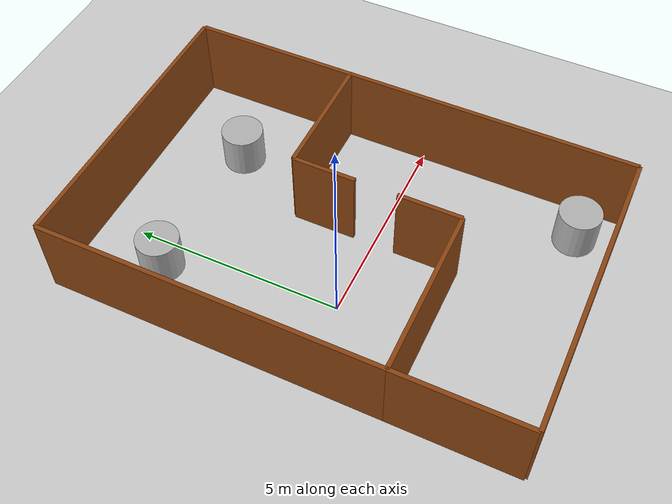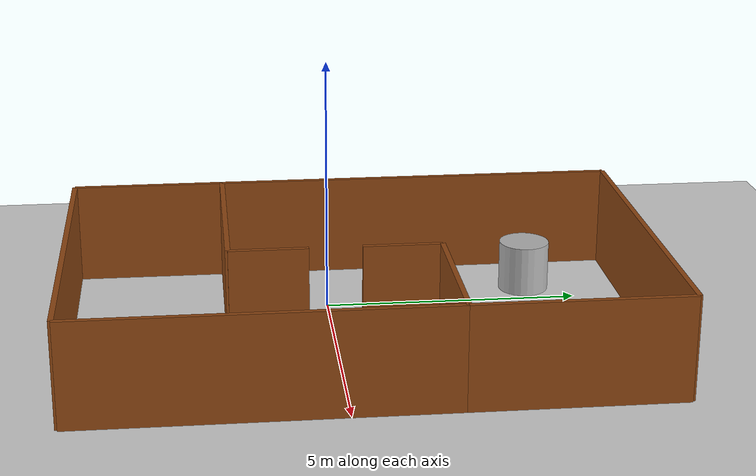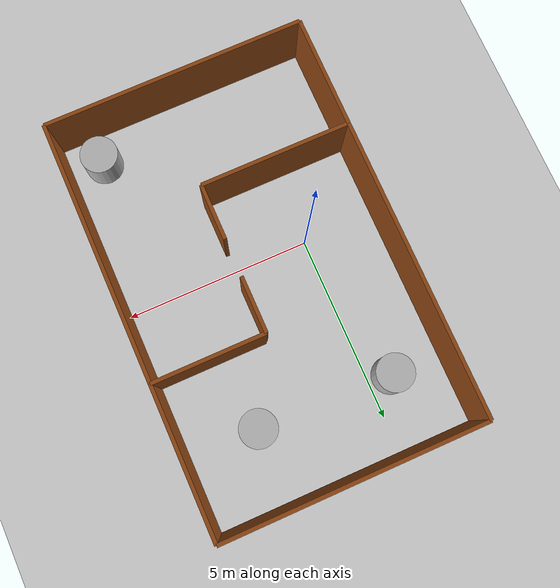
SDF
<?xml version="1.0" ?>

<sdf version="1.6">
  <world name="in_my_house">
    <physics name="1ms" type="ignored">
      <max_step_size>0.001</max_step_size>
      <real_time_factor>1.0</real_time_factor>
    </physics>
    <plugin
      filename="gz-sim-physics-system"
      name="gz::sim::systems::Physics">
    </plugin>
    <plugin
      filename="gz-sim-user-commands-system"
      name="gz::sim::systems::UserCommands">
    </plugin>
    <plugin
      filename="gz-sim-scene-broadcaster-system"
      name="gz::sim::systems::SceneBroadcaster">
    </plugin>
    <plugin
      filename="gz-sim-contact-system"
      name="gz::sim::systems::Contact">
    </plugin>

    <light type="directional" name="sun">
      <cast_shadows>true</cast_shadows>
      <pose>0 0 10 0 0 0</pose>
      <diffuse>0.8 0.8 0.8 1</diffuse>
      <specular>0.2 0.2 0.2 1</specular>
      <attenuation>
        <range>1000</range>
        <constant>0.9</constant>
        <linear>0.01</linear>
        <quadratic>0.001</quadratic>
      </attenuation>
      <direction>-0.5 0.1 -0.9</direction>
    </light>

    <model name="ground_plane">
      <static>true</static>
      <link name="link">
        <collision name="collision">
          <geometry>
            <plane>
              <normal>0 0 1</normal>
              <size>100 100</size>
            </plane>
          </geometry>
        </collision>
        <visual name="visual">
          <geometry>
            <plane>
              <normal>0 0 1</normal>
              <size>100 100</size>
            </plane>
          </geometry>
          <material>
            <ambient>0.8 0.8 0.8 1</ambient>
            <diffuse>0.8 0.8 0.8 1</diffuse>
            <specular>0.8 0.8 0.8 1</specular>
          </material>
        </visual>
      </link>
    </model>

    <!-- Evimizi ekliyoruz -->

    <include>
      <uri>models://my_house</uri>
      <name>my_house_0</name>
      <pose>0 0 0 0 0 0</pose>
    </include>

    <!-- Evin içine silindir ekliyoruz -->
    <model name='cylinder_0'>
      <pose>3.0750443933769169 3.9731146155776944 0.5 0 0 0</pose>
      <link name='cylinder_link'>
        <inertial>
          <inertia>
            <ixx>0.14580000000000001</ixx>
            <ixy>0</ixy>
            <ixz>0</ixz>
            <iyy>0.14580000000000001</iyy>
            <iyz>0</iyz>
            <izz>0.125</izz>
          </inertia>
          <mass>1</mass>
          <pose>0 0 0 0 0 0</pose>
        </inertial>
        <collision name='cylinder_collision'>
          <geometry>
            <cylinder>
              <radius>0.5</radius>
              <length>1</length>
            </cylinder>
          </geometry>
          <surface>
            <friction>
              <ode/>
            </friction>
            <bounce/>
            <contact/>
          </surface>
        </collision>
        <visual name='cylinder_visual'>
          <geometry>
            <cylinder>
              <radius>0.5</radius>
              <length>1</length>
            </cylinder>
          </geometry>
          <material>
            <ambient>0.300000012 0.300000012 0.300000012 1</ambient>
            <diffuse>0.699999988 0.699999988 0.699999988 1</diffuse>
            <specular>1 1 1 1</specular>
          </material>
        </visual>
      </link>
    </model>

    <!-- Evin içine silindir ekliyoruz -->
    <model name='cylinder_1'>
      <pose>-0.5953490688254921 4.0829731145354442 0.5 0 0 0</pose>
      <link name='cylinder_link'>
        <inertial>
          <inertia>
            <ixx>0.14580000000000001</ixx>
            <ixy>0</ixy>
            <ixz>0</ixz>
            <iyy>0.14580000000000001</iyy>
            <iyz>0</iyz>
            <izz>0.125</izz>
          </inertia>
          <mass>1</mass>
          <pose>0 0 0 0 0 0</pose>
        </inertial>
        <collision name='cylinder_collision'>
          <geometry>
            <cylinder>
              <radius>0.5</radius>
              <length>1</length>
            </cylinder>
          </geometry>
        </collision>
        <visual name='cylinder_visual'>
          <geometry>
            <cylinder>
              <radius>0.5</radius>
              <length>1</length>
            </cylinder>
          </geometry>
          <material>
            <ambient>0.300000012 0.300000012 0.300000012 1</ambient>
            <diffuse>0.699999988 0.699999988 0.699999988 1</diffuse>
            <specular>1 1 1 1</specular>
          </material>
        </visual>
        <pose>0 0 0 0 0 0</pose>
      </link>
    </model>

    <!-- Evin içine silindir ekliyoruz -->
    <model name='cylinder_2'>
      <pose>4.0674601233897523 -4.1347624700697931 0.5 0 0 0</pose>
      <link name='cylinder_link'>
        <inertial>
          <inertia>
            <ixx>0.14580000000000001</ixx>
            <ixy>0</ixy>
            <ixz>0</ixz>
            <iyy>0.14580000000000001</iyy>
            <iyz>0</iyz>
            <izz>0.125</izz>
          </inertia>
          <mass>1</mass>
          <pose>0 0 0 0 0 0</pose>
        </inertial>
        <collision name='cylinder_collision'>
          <geometry>
            <cylinder>
              <radius>0.5</radius>
              <length>1</length>
            </cylinder>
          </geometry>
          <surface>
            <friction>
              <ode/>
            </friction>
            <bounce/>
            <contact/>
          </surface>
        </collision>
        <visual name='cylinder_visual'>
          <geometry>
            <cylinder>
              <radius>0.5</radius>
              <length>1</length>
            </cylinder>
          </geometry>
          <material>
            <ambient>0.300000012 0.300000012 0.300000012 1</ambient>
            <diffuse>0.699999988 0.699999988 0.699999988 1</diffuse>
            <specular>1 1 1 1</specular>
          </material>
        </visual>
      </link>
    </model>

  </world>
</sdf>

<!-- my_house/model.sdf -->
<sdf version="1.6">
  <model name="my_house">

    <!-- Sabit olsun sürüklenmesin -->
    <static>true</static>

    <link name="link">

      <!-- wall_1 -->
      <collision name="wall_1_collision">
        <pose>-2.0 2.0 1.0 0 0 0</pose>
        <geometry>
          <box><size>0.1 8.0 2.0</size></box>
        </geometry>
      </collision>
      <visual name="wall_1">
        <pose>-2.0 2.0 1.0 0 0 0</pose>
        <geometry>
          <box><size>0.1 8.0 2.0</size></box>
        </geometry>
        <material>
          <ambient>0.55 0.27 0.07 1</ambient>
          <diffuse>0.55 0.27 0.07 1</diffuse>
          <specular>0.1 0.1 0.1 1</specular>
          <emissive>0 0 0 1</emissive>
        </material>
      </visual>

      <!-- wall_2 -->
      <collision name="wall_2_collision">
        <pose>1.5 6.0 1.0 0 0 -1.57</pose>
        <geometry>
          <box><size>0.1 7.0 2.0</size></box>
        </geometry>
      </collision>
      <visual name="wall_2">
        <pose>1.5 6.0 1.0 0 0 -1.57</pose>
        <geometry>
          <box><size>0.1 7.0 2.0</size></box>
        </geometry>
        <material>
          <ambient>0.55 0.27 0.07 1</ambient>
          <diffuse>0.55 0.27 0.07 1</diffuse>
          <specular>0.1 0.1 0.1 1</specular>
          <emissive>0 0 0 1</emissive>
        </material>
      </visual>

      <!-- wall_3 -->
      <collision name="wall_3_collision">
        <pose>5.0 4.0 1.0 0 0 0</pose>
        <geometry>
          <box><size>0.1 4.0 2.0</size></box>
        </geometry>
      </collision>
      <visual name="wall_3">
        <pose>5.0 4.0 1.0 0 0 0</pose>
        <geometry>
          <box><size>0.1 4.0 2.0</size></box>
        </geometry>
        <material>
          <ambient>0.55 0.27 0.07 1</ambient>
          <diffuse>0.55 0.27 0.07 1</diffuse>
          <specular>0.1 0.1 0.1 1</specular>
          <emissive>0 0 0 1</emissive>
        </material>
      </visual>

      <!-- wall_4 -->
      <collision name="wall_4_collision">
        <pose>3.5 2.0 1.0 0 0 -1.57</pose>
        <geometry>
          <box><size>0.1 3.0 2.0</size></box>
        </geometry>
      </collision>
      <visual name="wall_4">
        <pose>3.5 2.0 1.0 0 0 -1.57</pose>
        <geometry>
          <box><size>0.1 3.0 2.0</size></box>
        </geometry>
        <material>
          <ambient>0.55 0.27 0.07 1</ambient>
          <diffuse>0.55 0.27 0.07 1</diffuse>
          <specular>0.1 0.1 0.1 1</specular>
          <emissive>0 0 0 1</emissive>
        </material>
      </visual>

      <!-- wall_5 -->
      <collision name="wall_5_collision">
        <pose>2.0 1.25 1.0 0 0 0</pose>
        <geometry>
          <box><size>0.1 1.5 2.0</size></box>
        </geometry>
      </collision>
      <visual name="wall_5">
        <pose>2.0 1.25 1.0 0 0 0</pose>
        <geometry>
          <box><size>0.1 1.5 2.0</size></box>
        </geometry>
        <material>
          <ambient>0.55 0.27 0.07 1</ambient>
          <diffuse>0.55 0.27 0.07 1</diffuse>
          <specular>0.1 0.1 0.1 1</specular>
          <emissive>0 0 0 1</emissive>
        </material>
      </visual>

      <!-- wall_6 -->
      <collision name="wall_6_collision">
        <pose>2.0 -1.25 1.0 0 0 0</pose>
        <geometry>
          <box><size>0.1 1.5 2.0</size></box>
        </geometry>
      </collision>
      <visual name="wall_6">
        <pose>2.0 -1.25 1.0 0 0 0</pose>
        <geometry>
          <box><size>0.1 1.5 2.0</size></box>
        </geometry>
        <material>
          <ambient>0.55 0.27 0.07 1</ambient>
          <diffuse>0.55 0.27 0.07 1</diffuse>
          <specular>0.1 0.1 0.1 1</specular>
          <emissive>0 0 0 1</emissive>
        </material>
      </visual>

      <!-- wall_7 -->
      <collision name="wall_7_collision">
        <pose>0 -2.0 1.0 0 0 -1.57</pose>
        <geometry>
          <box><size>0.1 4 2.0</size></box>
        </geometry>
      </collision>
      <visual name="wall_7">
        <pose>0 -2.0 1.0 0 0 -1.57</pose>
        <geometry>
          <box><size>0.1 4 2.0</size></box>
        </geometry>
        <material>
          <ambient>0.55 0.27 0.07 1</ambient>
          <diffuse>0.55 0.27 0.07 1</diffuse>
          <specular>0.1 0.1 0.1 1</specular>
          <emissive>0 0 0 1</emissive>
        </material>
      </visual>

      <!-- wall_8 -->
      <collision name="wall_8_collision">
        <pose>5.0 -1.5 1.0 0 0 0</pose>
        <geometry>
          <box><size>0.1 7 2.0</size></box>
        </geometry>
      </collision>
      <visual name="wall_8">
        <pose>5.0 -1.5 1.0 0 0 0</pose>
        <geometry>
          <box><size>0.1 7 2.0</size></box>
        </geometry>
        <material>
          <ambient>0.55 0.27 0.07 1</ambient>
          <diffuse>0.55 0.27 0.07 1</diffuse>
          <specular>0.1 0.1 0.1 1</specular>
          <emissive>0 0 0 1</emissive>
        </material>
      </visual>

      <!-- wall_9 -->
      <collision name="wall_9_collision">
        <pose>1.5 -5.0 1.0 0 0 -1.57</pose>
        <geometry>
          <box><size>0.1 7 2.0</size></box>
        </geometry>
      </collision>
      <visual name="wall_9">
        <pose>1.5 -5.0 1.0 0 0 -1.57</pose>
        <geometry>
          <box><size>0.1 7 2.0</size></box>
        </geometry>
        <material>
          <ambient>0.55 0.27 0.07 1</ambient>
          <diffuse>0.55 0.27 0.07 1</diffuse>
          <specular>0.1 0.1 0.1 1</specular>
          <emissive>0 0 0 1</emissive>
        </material>
      </visual>

      <!-- wall_10 -->
      <collision name="wall_10_collision">
        <pose>-2.0 -3.5 1.0 0 0 0</pose>
        <geometry>
          <box><size>0.1 3 2.0</size></box>
        </geometry>
      </collision>
      <visual name="wall_10">
        <pose>-2.0 -3.5 1.0 0 0 0</pose>
        <geometry>
          <box><size>0.1 3 2.0</size></box>
        </geometry>
        <material>
          <ambient>0.55 0.27 0.07 1</ambient>
          <diffuse>0.55 0.27 0.07 1</diffuse>
          <specular>0.1 0.1 0.1 1</specular>
          <emissive>0 0 0 1</emissive>
        </material>
      </visual>

      <!-- Inertia Rastgele -->
      <inertial>
        <mass>1000</mass>
        <inertia>
          <ixx>0.005</ixx>
          <iyy>0.005</iyy>
          <izz>0.005</izz>
          <ixy>0</ixy>
          <ixz>0</ixz>
          <iyz>0</iyz>
        </inertia>
      </inertial>

    </link>
  </model>
</sdf>
